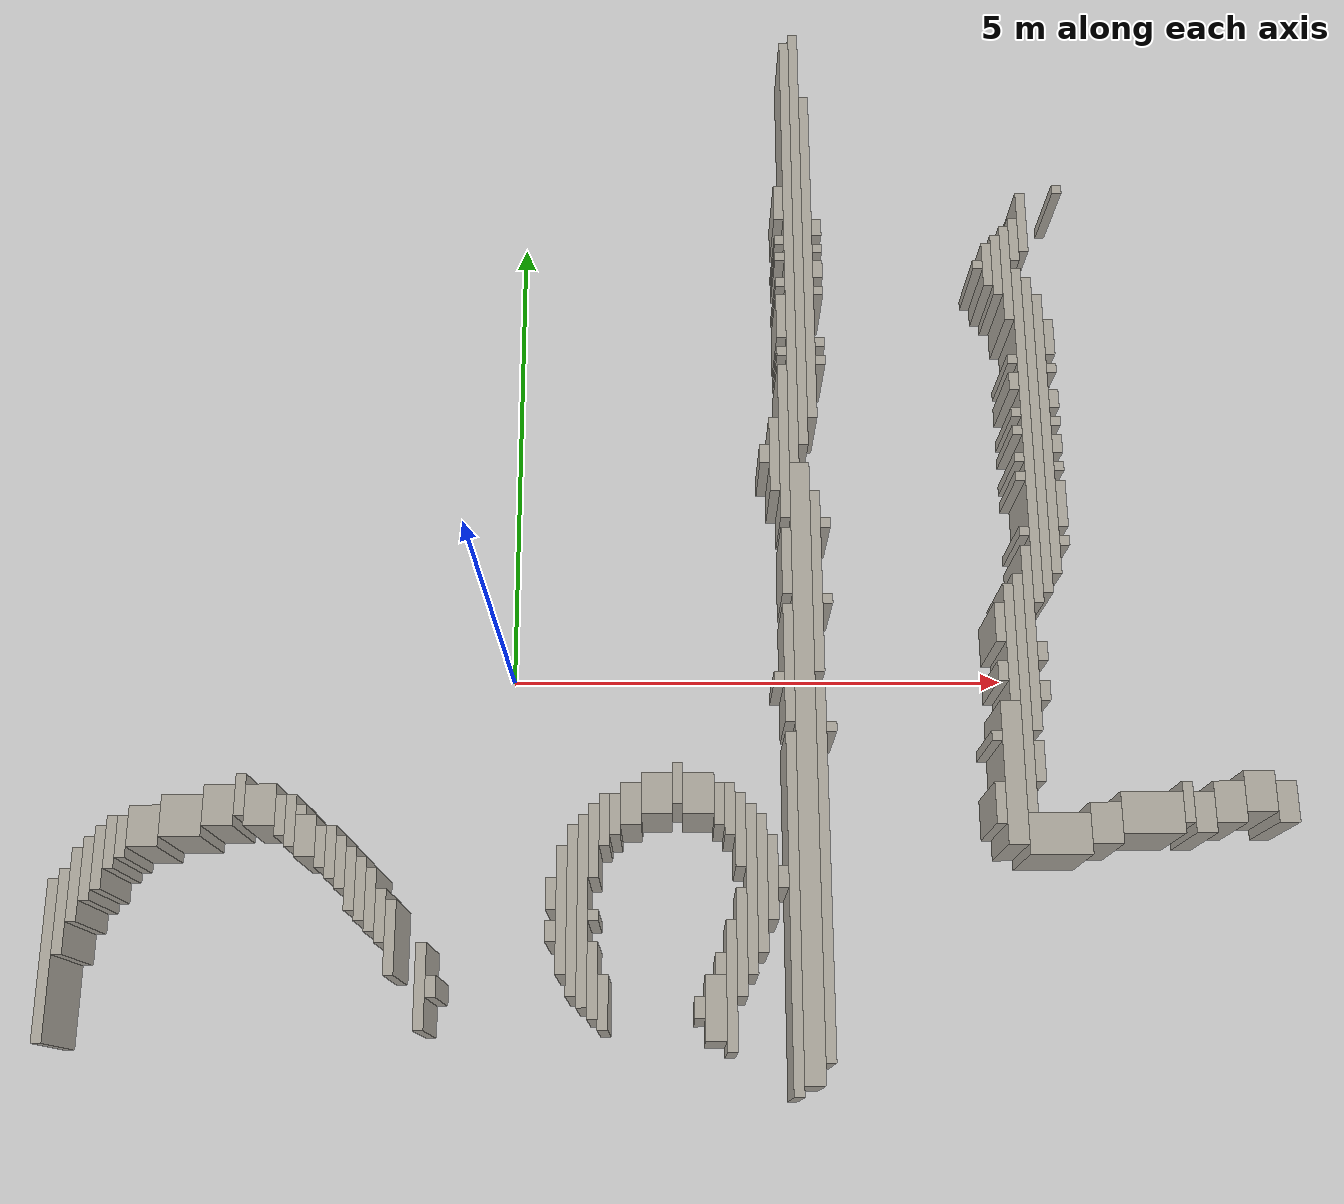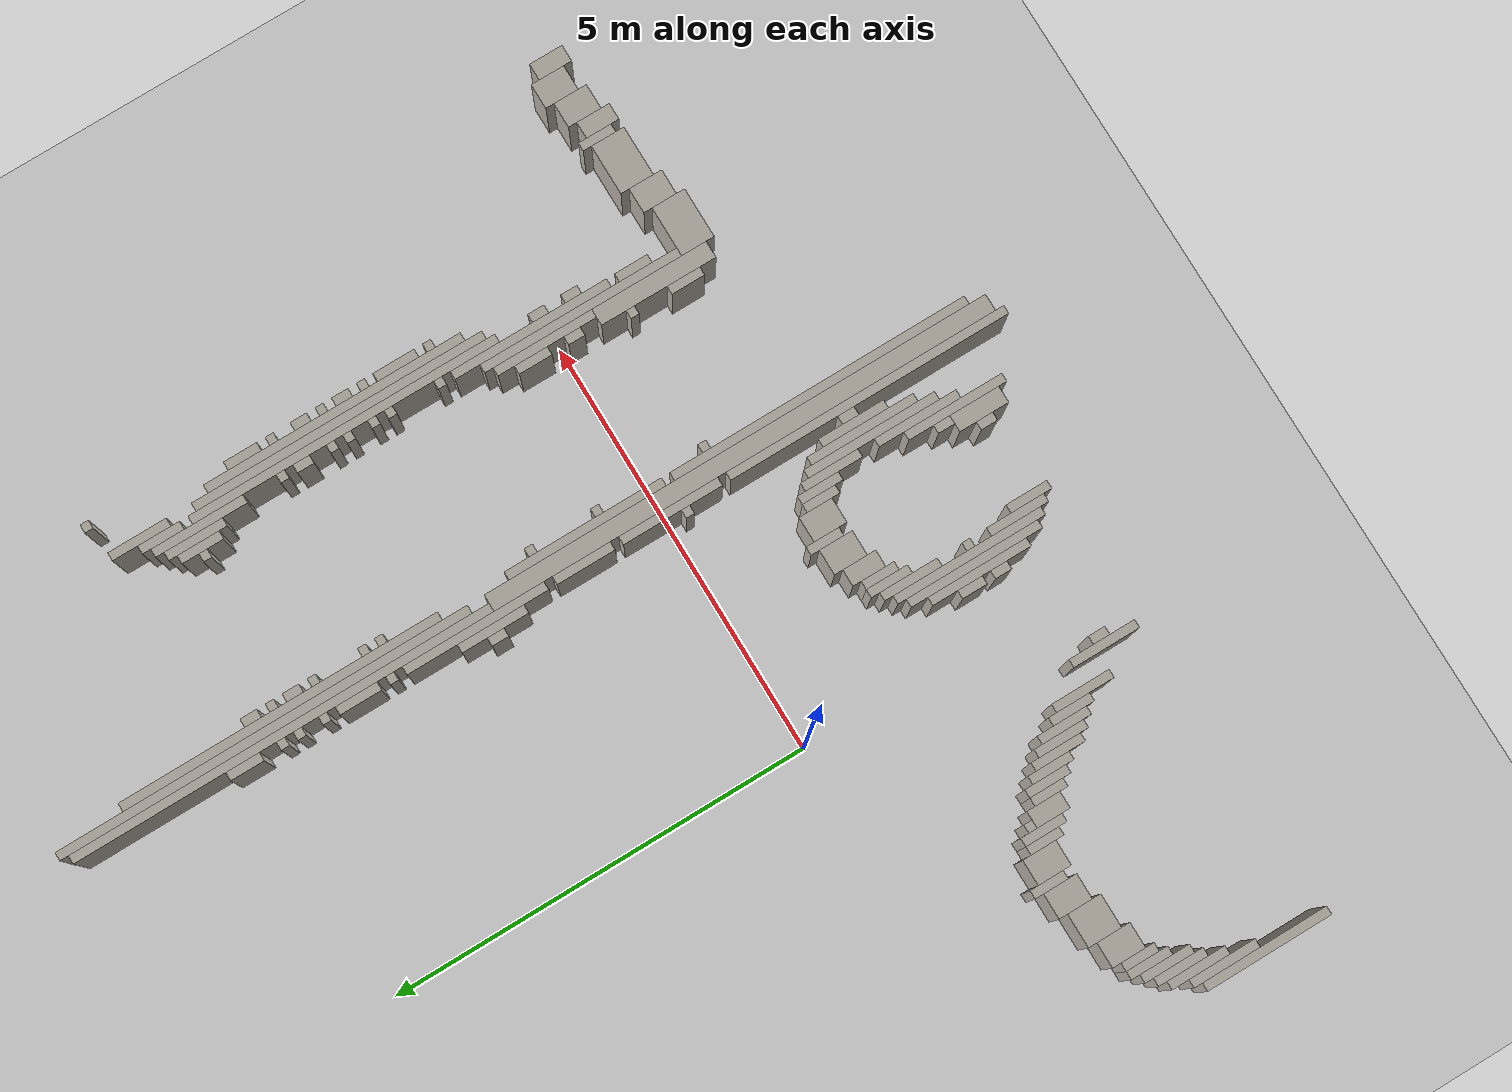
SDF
<sdf version="1.6">
 <world name="willow_office">
  <include><uri>model://sun</uri></include>
  <include><uri>model://ground_plane</uri></include>
  <model name="willow_office_walls">
   <static>true</static>
   <link name="w0253">
    <pose>2.765 -2.438 0.500 0 0 0</pose>
    <collision name="c"><geometry><box><size>0.100 3.400 1.000</size></box></geometry></collision>
    <visual name="v">
     <geometry><box><size>0.100 3.400 1.000</size></box></geometry>
     <material><ambient>0.68 0.66 0.62 1</ambient><diffuse>0.68 0.66 0.62 1</diffuse></material>
    </visual>
   </link>
   <link name="w0261">
    <pose>2.915 -0.988 0.500 0 0 0</pose>
    <collision name="c"><geometry><box><size>0.200 6.100 1.000</size></box></geometry></collision>
    <visual name="v">
     <geometry><box><size>0.200 6.100 1.000</size></box></geometry>
     <material><ambient>0.68 0.66 0.62 1</ambient><diffuse>0.68 0.66 0.62 1</diffuse></material>
    </visual>
   </link>
   <link name="w0270">
    <pose>3.065 -2.038 0.500 0 0 0</pose>
    <collision name="c"><geometry><box><size>0.100 3.600 1.000</size></box></geometry></collision>
    <visual name="v">
     <geometry><box><size>0.100 3.600 1.000</size></box></geometry>
     <material><ambient>0.68 0.66 0.62 1</ambient><diffuse>0.68 0.66 0.62 1</diffuse></material>
    </visual>
   </link>
   <link name="w0278">
    <pose>2.165 -3.138 0.500 0 0 0</pose>
    <collision name="c"><geometry><box><size>0.100 1.200 1.000</size></box></geometry></collision>
    <visual name="v">
     <geometry><box><size>0.100 1.200 1.000</size></box></geometry>
     <material><ambient>0.68 0.66 0.62 1</ambient><diffuse>0.68 0.66 0.62 1</diffuse></material>
    </visual>
   </link>
   <link name="w0287">
    <pose>-4.235 -2.888 0.500 0 0 0</pose>
    <collision name="c"><geometry><box><size>0.100 1.500 1.000</size></box></geometry></collision>
    <visual name="v">
     <geometry><box><size>0.100 1.500 1.000</size></box></geometry>
     <material><ambient>0.68 0.66 0.62 1</ambient><diffuse>0.68 0.66 0.62 1</diffuse></material>
    </visual>
   </link>
   <link name="w0289">
    <pose>2.015 -3.338 0.500 0 0 0</pose>
    <collision name="c"><geometry><box><size>0.200 0.600 1.000</size></box></geometry></collision>
    <visual name="v">
     <geometry><box><size>0.200 0.600 1.000</size></box></geometry>
     <material><ambient>0.68 0.66 0.62 1</ambient><diffuse>0.68 0.66 0.62 1</diffuse></material>
    </visual>
   </link>
   <link name="w0297">
    <pose>-0.735 -3.138 0.500 0 0 0</pose>
    <collision name="c"><geometry><box><size>0.100 0.800 1.000</size></box></geometry></collision>
    <visual name="v">
     <geometry><box><size>0.100 0.800 1.000</size></box></geometry>
     <material><ambient>0.68 0.66 0.62 1</ambient><diffuse>0.68 0.66 0.62 1</diffuse></material>
    </visual>
   </link>
   <link name="w0298">
    <pose>0.965 -3.288 0.500 0 0 0</pose>
    <collision name="c"><geometry><box><size>0.100 0.500 1.000</size></box></geometry></collision>
    <visual name="v">
     <geometry><box><size>0.100 0.500 1.000</size></box></geometry>
     <material><ambient>0.68 0.66 0.62 1</ambient><diffuse>0.68 0.66 0.62 1</diffuse></material>
    </visual>
   </link>
   <link name="w0306">
    <pose>0.865 -3.088 0.500 0 0 0</pose>
    <collision name="c"><geometry><box><size>0.100 0.700 1.000</size></box></geometry></collision>
    <visual name="v">
     <geometry><box><size>0.100 0.700 1.000</size></box></geometry>
     <material><ambient>0.68 0.66 0.62 1</ambient><diffuse>0.68 0.66 0.62 1</diffuse></material>
    </visual>
   </link>
   <link name="w0307">
    <pose>1.865 -3.338 0.500 0 0 0</pose>
    <collision name="c"><geometry><box><size>0.100 0.200 1.000</size></box></geometry></collision>
    <visual name="v">
     <geometry><box><size>0.100 0.200 1.000</size></box></geometry>
     <material><ambient>0.68 0.66 0.62 1</ambient><diffuse>0.68 0.66 0.62 1</diffuse></material>
    </visual>
   </link>
   <link name="w0316">
    <pose>0.765 -2.438 0.500 0 0 0</pose>
    <collision name="c"><geometry><box><size>0.100 1.800 1.000</size></box></geometry></collision>
    <visual name="v">
     <geometry><box><size>0.100 1.800 1.000</size></box></geometry>
     <material><ambient>0.68 0.66 0.62 1</ambient><diffuse>0.68 0.66 0.62 1</diffuse></material>
    </visual>
   </link>
   <link name="w0321">
    <pose>-0.635 -3.138 0.500 0 0 0</pose>
    <collision name="c"><geometry><box><size>0.100 0.200 1.000</size></box></geometry></collision>
    <visual name="v">
     <geometry><box><size>0.100 0.200 1.000</size></box></geometry>
     <material><ambient>0.68 0.66 0.62 1</ambient><diffuse>0.68 0.66 0.62 1</diffuse></material>
    </visual>
   </link>
   <link name="w0322">
    <pose>0.665 -2.438 0.500 0 0 0</pose>
    <collision name="c"><geometry><box><size>0.100 1.600 1.000</size></box></geometry></collision>
    <visual name="v">
     <geometry><box><size>0.100 1.600 1.000</size></box></geometry>
     <material><ambient>0.68 0.66 0.62 1</ambient><diffuse>0.68 0.66 0.62 1</diffuse></material>
    </visual>
   </link>
   <link name="w0323">
    <pose>2.265 -2.738 0.500 0 0 0</pose>
    <collision name="c"><geometry><box><size>0.100 1.000 1.000</size></box></geometry></collision>
    <visual name="v">
     <geometry><box><size>0.100 1.000 1.000</size></box></geometry>
     <material><ambient>0.68 0.66 0.62 1</ambient><diffuse>0.68 0.66 0.62 1</diffuse></material>
    </visual>
   </link>
   <link name="w0336">
    <pose>-1.035 -2.688 0.500 0 0 0</pose>
    <collision name="c"><geometry><box><size>0.100 0.700 1.000</size></box></geometry></collision>
    <visual name="v">
     <geometry><box><size>0.100 0.700 1.000</size></box></geometry>
     <material><ambient>0.68 0.66 0.62 1</ambient><diffuse>0.68 0.66 0.62 1</diffuse></material>
    </visual>
   </link>
   <link name="w0337">
    <pose>0.565 -2.438 0.500 0 0 0</pose>
    <collision name="c"><geometry><box><size>0.100 1.200 1.000</size></box></geometry></collision>
    <visual name="v">
     <geometry><box><size>0.100 1.200 1.000</size></box></geometry>
     <material><ambient>0.68 0.66 0.62 1</ambient><diffuse>0.68 0.66 0.62 1</diffuse></material>
    </visual>
   </link>
   <link name="w0338">
    <pose>2.065 -2.938 0.500 0 0 0</pose>
    <collision name="c"><geometry><box><size>0.100 0.200 1.000</size></box></geometry></collision>
    <visual name="v">
     <geometry><box><size>0.100 0.200 1.000</size></box></geometry>
     <material><ambient>0.68 0.66 0.62 1</ambient><diffuse>0.68 0.66 0.62 1</diffuse></material>
    </visual>
   </link>
   <link name="w0339">
    <pose>2.365 -2.238 0.500 0 0 0</pose>
    <collision name="c"><geometry><box><size>0.100 1.600 1.000</size></box></geometry></collision>
    <visual name="v">
     <geometry><box><size>0.100 1.600 1.000</size></box></geometry>
     <material><ambient>0.68 0.66 0.62 1</ambient><diffuse>0.68 0.66 0.62 1</diffuse></material>
    </visual>
   </link>
   <link name="w0354">
    <pose>-4.135 -2.438 0.500 0 0 0</pose>
    <collision name="c"><geometry><box><size>0.100 0.800 1.000</size></box></geometry></collision>
    <visual name="v">
     <geometry><box><size>0.100 0.800 1.000</size></box></geometry>
     <material><ambient>0.68 0.66 0.62 1</ambient><diffuse>0.68 0.66 0.62 1</diffuse></material>
    </visual>
   </link>
   <link name="w0355">
    <pose>2.465 -2.188 0.500 0 0 0</pose>
    <collision name="c"><geometry><box><size>0.100 1.300 1.000</size></box></geometry></collision>
    <visual name="v">
     <geometry><box><size>0.100 1.300 1.000</size></box></geometry>
     <material><ambient>0.68 0.66 0.62 1</ambient><diffuse>0.68 0.66 0.62 1</diffuse></material>
    </visual>
   </link>
   <link name="w0358">
    <pose>-1.135 -2.488 0.500 0 0 0</pose>
    <collision name="c"><geometry><box><size>0.100 0.500 1.000</size></box></geometry></collision>
    <visual name="v">
     <geometry><box><size>0.100 0.500 1.000</size></box></geometry>
     <material><ambient>0.68 0.66 0.62 1</ambient><diffuse>0.68 0.66 0.62 1</diffuse></material>
    </visual>
   </link>
   <link name="w0359">
    <pose>0.465 -2.638 0.500 0 0 0</pose>
    <collision name="c"><geometry><box><size>0.100 0.200 1.000</size></box></geometry></collision>
    <visual name="v">
     <geometry><box><size>0.100 0.200 1.000</size></box></geometry>
     <material><ambient>0.68 0.66 0.62 1</ambient><diffuse>0.68 0.66 0.62 1</diffuse></material>
    </visual>
   </link>
   <link name="w0365">
    <pose>-1.235 -2.338 0.500 0 0 0</pose>
    <collision name="c"><geometry><box><size>0.100 0.600 1.000</size></box></geometry></collision>
    <visual name="v">
     <geometry><box><size>0.100 0.600 1.000</size></box></geometry>
     <material><ambient>0.68 0.66 0.62 1</ambient><diffuse>0.68 0.66 0.62 1</diffuse></material>
    </visual>
   </link>
   <link name="w0368">
    <pose>-4.035 -2.188 0.500 0 0 0</pose>
    <collision name="c"><geometry><box><size>0.100 0.700 1.000</size></box></geometry></collision>
    <visual name="v">
     <geometry><box><size>0.100 0.700 1.000</size></box></geometry>
     <material><ambient>0.68 0.66 0.62 1</ambient><diffuse>0.68 0.66 0.62 1</diffuse></material>
    </visual>
   </link>
   <link name="w0369">
    <pose>-1.335 -2.238 0.500 0 0 0</pose>
    <collision name="c"><geometry><box><size>0.100 0.600 1.000</size></box></geometry></collision>
    <visual name="v">
     <geometry><box><size>0.100 0.600 1.000</size></box></geometry>
     <material><ambient>0.68 0.66 0.62 1</ambient><diffuse>0.68 0.66 0.62 1</diffuse></material>
    </visual>
   </link>
   <link name="w0370">
    <pose>0.865 -2.488 0.500 0 0 0</pose>
    <collision name="c"><geometry><box><size>0.100 0.100 1.000</size></box></geometry></collision>
    <visual name="v">
     <geometry><box><size>0.100 0.100 1.000</size></box></geometry>
     <material><ambient>0.68 0.66 0.62 1</ambient><diffuse>0.68 0.66 0.62 1</diffuse></material>
    </visual>
   </link>
   <link name="w0371">
    <pose>2.565 -2.138 0.500 0 0 0</pose>
    <collision name="c"><geometry><box><size>0.100 0.800 1.000</size></box></geometry></collision>
    <visual name="v">
     <geometry><box><size>0.100 0.800 1.000</size></box></geometry>
     <material><ambient>0.68 0.66 0.62 1</ambient><diffuse>0.68 0.66 0.62 1</diffuse></material>
    </visual>
   </link>
   <link name="w0375">
    <pose>-1.435 -2.138 0.500 0 0 0</pose>
    <collision name="c"><geometry><box><size>0.100 0.600 1.000</size></box></geometry></collision>
    <visual name="v">
     <geometry><box><size>0.100 0.600 1.000</size></box></geometry>
     <material><ambient>0.68 0.66 0.62 1</ambient><diffuse>0.68 0.66 0.62 1</diffuse></material>
    </visual>
   </link>
   <link name="w0376">
    <pose>0.465 -2.288 0.500 0 0 0</pose>
    <collision name="c"><geometry><box><size>0.100 0.300 1.000</size></box></geometry></collision>
    <visual name="v">
     <geometry><box><size>0.100 0.300 1.000</size></box></geometry>
     <material><ambient>0.68 0.66 0.62 1</ambient><diffuse>0.68 0.66 0.62 1</diffuse></material>
    </visual>
   </link>
   <link name="w0378">
    <pose>-3.935 -2.038 0.500 0 0 0</pose>
    <collision name="c"><geometry><box><size>0.100 0.600 1.000</size></box></geometry></collision>
    <visual name="v">
     <geometry><box><size>0.100 0.600 1.000</size></box></geometry>
     <material><ambient>0.68 0.66 0.62 1</ambient><diffuse>0.68 0.66 0.62 1</diffuse></material>
    </visual>
   </link>
   <link name="w0380">
    <pose>-3.835 -1.938 0.500 0 0 0</pose>
    <collision name="c"><geometry><box><size>0.100 0.600 1.000</size></box></geometry></collision>
    <visual name="v">
     <geometry><box><size>0.100 0.600 1.000</size></box></geometry>
     <material><ambient>0.68 0.66 0.62 1</ambient><diffuse>0.68 0.66 0.62 1</diffuse></material>
    </visual>
   </link>
   <link name="w0381">
    <pose>-1.535 -1.988 0.500 0 0 0</pose>
    <collision name="c"><geometry><box><size>0.100 0.500 1.000</size></box></geometry></collision>
    <visual name="v">
     <geometry><box><size>0.100 0.500 1.000</size></box></geometry>
     <material><ambient>0.68 0.66 0.62 1</ambient><diffuse>0.68 0.66 0.62 1</diffuse></material>
    </visual>
   </link>
   <link name="w0382">
    <pose>2.665 -2.138 0.500 0 0 0</pose>
    <collision name="c"><geometry><box><size>0.100 0.200 1.000</size></box></geometry></collision>
    <visual name="v">
     <geometry><box><size>0.100 0.200 1.000</size></box></geometry>
     <material><ambient>0.68 0.66 0.62 1</ambient><diffuse>0.68 0.66 0.62 1</diffuse></material>
    </visual>
   </link>
   <link name="w0386">
    <pose>-1.635 -1.888 0.500 0 0 0</pose>
    <collision name="c"><geometry><box><size>0.100 0.500 1.000</size></box></geometry></collision>
    <visual name="v">
     <geometry><box><size>0.100 0.500 1.000</size></box></geometry>
     <material><ambient>0.68 0.66 0.62 1</ambient><diffuse>0.68 0.66 0.62 1</diffuse></material>
    </visual>
   </link>
   <link name="w0387">
    <pose>0.865 -1.788 0.500 0 0 0</pose>
    <collision name="c"><geometry><box><size>0.100 0.700 1.000</size></box></geometry></collision>
    <visual name="v">
     <geometry><box><size>0.100 0.700 1.000</size></box></geometry>
     <material><ambient>0.68 0.66 0.62 1</ambient><diffuse>0.68 0.66 0.62 1</diffuse></material>
    </visual>
   </link>
   <link name="w0392">
    <pose>-3.735 -1.788 0.500 0 0 0</pose>
    <collision name="c"><geometry><box><size>0.100 0.500 1.000</size></box></geometry></collision>
    <visual name="v">
     <geometry><box><size>0.100 0.500 1.000</size></box></geometry>
     <material><ambient>0.68 0.66 0.62 1</ambient><diffuse>0.68 0.66 0.62 1</diffuse></material>
    </visual>
   </link>
   <link name="w0393">
    <pose>-1.735 -1.838 0.500 0 0 0</pose>
    <collision name="c"><geometry><box><size>0.100 0.400 1.000</size></box></geometry></collision>
    <visual name="v">
     <geometry><box><size>0.100 0.400 1.000</size></box></geometry>
     <material><ambient>0.68 0.66 0.62 1</ambient><diffuse>0.68 0.66 0.62 1</diffuse></material>
    </visual>
   </link>
   <link name="w0394">
    <pose>2.265 -1.688 0.500 0 0 0</pose>
    <collision name="c"><geometry><box><size>0.100 0.700 1.000</size></box></geometry></collision>
    <visual name="v">
     <geometry><box><size>0.100 0.700 1.000</size></box></geometry>
     <material><ambient>0.68 0.66 0.62 1</ambient><diffuse>0.68 0.66 0.62 1</diffuse></material>
    </visual>
   </link>
   <link name="w0400">
    <pose>-3.635 -1.738 0.500 0 0 0</pose>
    <collision name="c"><geometry><box><size>0.100 0.400 1.000</size></box></geometry></collision>
    <visual name="v">
     <geometry><box><size>0.100 0.400 1.000</size></box></geometry>
     <material><ambient>0.68 0.66 0.62 1</ambient><diffuse>0.68 0.66 0.62 1</diffuse></material>
    </visual>
   </link>
   <link name="w0401">
    <pose>-1.885 -1.738 0.500 0 0 0</pose>
    <collision name="c"><geometry><box><size>0.200 0.400 1.000</size></box></geometry></collision>
    <visual name="v">
     <geometry><box><size>0.200 0.400 1.000</size></box></geometry>
     <material><ambient>0.68 0.66 0.62 1</ambient><diffuse>0.68 0.66 0.62 1</diffuse></material>
    </visual>
   </link>
   <link name="w0402">
    <pose>5.315 -1.738 0.500 0 0 0</pose>
    <collision name="c"><geometry><box><size>0.600 0.400 1.000</size></box></geometry></collision>
    <visual name="v">
     <geometry><box><size>0.600 0.400 1.000</size></box></geometry>
     <material><ambient>0.68 0.66 0.62 1</ambient><diffuse>0.68 0.66 0.62 1</diffuse></material>
    </visual>
   </link>
   <link name="w0408">
    <pose>-3.435 -1.638 0.500 0 0 0</pose>
    <collision name="c"><geometry><box><size>0.300 0.400 1.000</size></box></geometry></collision>
    <visual name="v">
     <geometry><box><size>0.300 0.400 1.000</size></box></geometry>
     <material><ambient>0.68 0.66 0.62 1</ambient><diffuse>0.68 0.66 0.62 1</diffuse></material>
    </visual>
   </link>
   <link name="w0409">
    <pose>-2.035 -1.588 0.500 0 0 0</pose>
    <collision name="c"><geometry><box><size>0.100 0.500 1.000</size></box></geometry></collision>
    <visual name="v">
     <geometry><box><size>0.100 0.500 1.000</size></box></geometry>
     <material><ambient>0.68 0.66 0.62 1</ambient><diffuse>0.68 0.66 0.62 1</diffuse></material>
    </visual>
   </link>
   <link name="w0410">
    <pose>0.965 -1.588 0.500 0 0 0</pose>
    <collision name="c"><geometry><box><size>0.100 0.500 1.000</size></box></geometry></collision>
    <visual name="v">
     <geometry><box><size>0.100 0.500 1.000</size></box></geometry>
     <material><ambient>0.68 0.66 0.62 1</ambient><diffuse>0.68 0.66 0.62 1</diffuse></material>
    </visual>
   </link>
   <link name="w0411">
    <pose>4.915 -1.138 0.500 0 0 0</pose>
    <collision name="c"><geometry><box><size>0.200 1.400 1.000</size></box></geometry></collision>
    <visual name="v">
     <geometry><box><size>0.200 1.400 1.000</size></box></geometry>
     <material><ambient>0.68 0.66 0.62 1</ambient><diffuse>0.68 0.66 0.62 1</diffuse></material>
    </visual>
   </link>
   <link name="w0412">
    <pose>5.765 -1.638 0.500 0 0 0</pose>
    <collision name="c"><geometry><box><size>0.300 0.400 1.000</size></box></geometry></collision>
    <visual name="v">
     <geometry><box><size>0.300 0.400 1.000</size></box></geometry>
     <material><ambient>0.68 0.66 0.62 1</ambient><diffuse>0.68 0.66 0.62 1</diffuse></material>
    </visual>
   </link>
   <link name="w0417">
    <pose>-3.085 -1.538 0.500 0 0 0</pose>
    <collision name="c"><geometry><box><size>0.400 0.400 1.000</size></box></geometry></collision>
    <visual name="v">
     <geometry><box><size>0.400 0.400 1.000</size></box></geometry>
     <material><ambient>0.68 0.66 0.62 1</ambient><diffuse>0.68 0.66 0.62 1</diffuse></material>
    </visual>
   </link>
   <link name="w0418">
    <pose>-2.135 -1.538 0.500 0 0 0</pose>
    <collision name="c"><geometry><box><size>0.100 0.400 1.000</size></box></geometry></collision>
    <visual name="v">
     <geometry><box><size>0.100 0.400 1.000</size></box></geometry>
     <material><ambient>0.68 0.66 0.62 1</ambient><diffuse>0.68 0.66 0.62 1</diffuse></material>
    </visual>
   </link>
   <link name="w0419">
    <pose>1.065 -1.538 0.500 0 0 0</pose>
    <collision name="c"><geometry><box><size>0.100 0.400 1.000</size></box></geometry></collision>
    <visual name="v">
     <geometry><box><size>0.100 0.400 1.000</size></box></geometry>
     <material><ambient>0.68 0.66 0.62 1</ambient><diffuse>0.68 0.66 0.62 1</diffuse></material>
    </visual>
   </link>
   <link name="w0420">
    <pose>2.165 -1.488 0.500 0 0 0</pose>
    <collision name="c"><geometry><box><size>0.100 0.500 1.000</size></box></geometry></collision>
    <visual name="v">
     <geometry><box><size>0.100 0.500 1.000</size></box></geometry>
     <material><ambient>0.68 0.66 0.62 1</ambient><diffuse>0.68 0.66 0.62 1</diffuse></material>
    </visual>
   </link>
   <link name="w0421">
    <pose>6.215 -1.538 0.500 0 0 0</pose>
    <collision name="c"><geometry><box><size>0.600 0.400 1.000</size></box></geometry></collision>
    <visual name="v">
     <geometry><box><size>0.600 0.400 1.000</size></box></geometry>
     <material><ambient>0.68 0.66 0.62 1</ambient><diffuse>0.68 0.66 0.62 1</diffuse></material>
    </visual>
   </link>
   <link name="w0422">
    <pose>6.715 -1.538 0.500 0 0 0</pose>
    <collision name="c"><geometry><box><size>0.200 0.400 1.000</size></box></geometry></collision>
    <visual name="v">
     <geometry><box><size>0.200 0.400 1.000</size></box></geometry>
     <material><ambient>0.68 0.66 0.62 1</ambient><diffuse>0.68 0.66 0.62 1</diffuse></material>
    </visual>
   </link>
   <link name="w0427">
    <pose>-2.735 -1.438 0.500 0 0 0</pose>
    <collision name="c"><geometry><box><size>0.300 0.400 1.000</size></box></geometry></collision>
    <visual name="v">
     <geometry><box><size>0.300 0.400 1.000</size></box></geometry>
     <material><ambient>0.68 0.66 0.62 1</ambient><diffuse>0.68 0.66 0.62 1</diffuse></material>
    </visual>
   </link>
   <link name="w0428">
    <pose>-2.335 -1.438 0.500 0 0 0</pose>
    <collision name="c"><geometry><box><size>0.300 0.400 1.000</size></box></geometry></collision>
    <visual name="v">
     <geometry><box><size>0.300 0.400 1.000</size></box></geometry>
     <material><ambient>0.68 0.66 0.62 1</ambient><diffuse>0.68 0.66 0.62 1</diffuse></material>
    </visual>
   </link>
   <link name="w0429">
    <pose>1.215 -1.438 0.500 0 0 0</pose>
    <collision name="c"><geometry><box><size>0.200 0.400 1.000</size></box></geometry></collision>
    <visual name="v">
     <geometry><box><size>0.200 0.400 1.000</size></box></geometry>
     <material><ambient>0.68 0.66 0.62 1</ambient><diffuse>0.68 0.66 0.62 1</diffuse></material>
    </visual>
   </link>
   <link name="w0430">
    <pose>2.065 -1.438 0.500 0 0 0</pose>
    <collision name="c"><geometry><box><size>0.100 0.400 1.000</size></box></geometry></collision>
    <visual name="v">
     <geometry><box><size>0.100 0.400 1.000</size></box></geometry>
     <material><ambient>0.68 0.66 0.62 1</ambient><diffuse>0.68 0.66 0.62 1</diffuse></material>
    </visual>
   </link>
   <link name="w0431">
    <pose>4.765 -1.438 0.500 0 0 0</pose>
    <collision name="c"><geometry><box><size>0.100 0.400 1.000</size></box></geometry></collision>
    <visual name="v">
     <geometry><box><size>0.100 0.400 1.000</size></box></geometry>
     <material><ambient>0.68 0.66 0.62 1</ambient><diffuse>0.68 0.66 0.62 1</diffuse></material>
    </visual>
   </link>
   <link name="w0432">
    <pose>6.565 -1.438 0.500 0 0 0</pose>
    <collision name="c"><geometry><box><size>0.100 0.400 1.000</size></box></geometry></collision>
    <visual name="v">
     <geometry><box><size>0.100 0.400 1.000</size></box></geometry>
     <material><ambient>0.68 0.66 0.62 1</ambient><diffuse>0.68 0.66 0.62 1</diffuse></material>
    </visual>
   </link>
   <link name="w0433">
    <pose>6.965 -1.438 0.500 0 0 0</pose>
    <collision name="c"><geometry><box><size>0.300 0.400 1.000</size></box></geometry></collision>
    <visual name="v">
     <geometry><box><size>0.300 0.400 1.000</size></box></geometry>
     <material><ambient>0.68 0.66 0.62 1</ambient><diffuse>0.68 0.66 0.62 1</diffuse></material>
    </visual>
   </link>
   <link name="w0434">
    <pose>7.515 -1.438 0.500 0 0 0</pose>
    <collision name="c"><geometry><box><size>0.200 0.400 1.000</size></box></geometry></collision>
    <visual name="v">
     <geometry><box><size>0.200 0.400 1.000</size></box></geometry>
     <material><ambient>0.68 0.66 0.62 1</ambient><diffuse>0.68 0.66 0.62 1</diffuse></material>
    </visual>
   </link>
   <link name="w0441">
    <pose>-2.535 -1.338 0.500 0 0 0</pose>
    <collision name="c"><geometry><box><size>0.100 0.400 1.000</size></box></geometry></collision>
    <visual name="v">
     <geometry><box><size>0.100 0.400 1.000</size></box></geometry>
     <material><ambient>0.68 0.66 0.62 1</ambient><diffuse>0.68 0.66 0.62 1</diffuse></material>
    </visual>
   </link>
   <link name="w0442">
    <pose>-1.935 -1.488 0.500 0 0 0</pose>
    <collision name="c"><geometry><box><size>0.100 0.100 1.000</size></box></geometry></collision>
    <visual name="v">
     <geometry><box><size>0.100 0.100 1.000</size></box></geometry>
     <material><ambient>0.68 0.66 0.62 1</ambient><diffuse>0.68 0.66 0.62 1</diffuse></material>
    </visual>
   </link>
   <link name="w0443">
    <pose>1.465 -1.338 0.500 0 0 0</pose>
    <collision name="c"><geometry><box><size>0.300 0.400 1.000</size></box></geometry></collision>
    <visual name="v">
     <geometry><box><size>0.300 0.400 1.000</size></box></geometry>
     <material><ambient>0.68 0.66 0.62 1</ambient><diffuse>0.68 0.66 0.62 1</diffuse></material>
    </visual>
   </link>
   <link name="w0444">
    <pose>1.865 -1.338 0.500 0 0 0</pose>
    <collision name="c"><geometry><box><size>0.300 0.400 1.000</size></box></geometry></collision>
    <visual name="v">
     <geometry><box><size>0.300 0.400 1.000</size></box></geometry>
     <material><ambient>0.68 0.66 0.62 1</ambient><diffuse>0.68 0.66 0.62 1</diffuse></material>
    </visual>
   </link>
   <link name="w0445">
    <pose>5.065 -0.338 0.500 0 0 0</pose>
    <collision name="c"><geometry><box><size>0.100 2.400 1.000</size></box></geometry></collision>
    <visual name="v">
     <geometry><box><size>0.100 2.400 1.000</size></box></geometry>
     <material><ambient>0.68 0.66 0.62 1</ambient><diffuse>0.68 0.66 0.62 1</diffuse></material>
    </visual>
   </link>
   <link name="w0446">
    <pose>7.265 -1.338 0.500 0 0 0</pose>
    <collision name="c"><geometry><box><size>0.300 0.400 1.000</size></box></geometry></collision>
    <visual name="v">
     <geometry><box><size>0.300 0.400 1.000</size></box></geometry>
     <material><ambient>0.68 0.66 0.62 1</ambient><diffuse>0.68 0.66 0.62 1</diffuse></material>
    </visual>
   </link>
   <link name="w0453">
    <pose>1.665 -1.238 0.500 0 0 0</pose>
    <collision name="c"><geometry><box><size>0.100 0.400 1.000</size></box></geometry></collision>
    <visual name="v">
     <geometry><box><size>0.100 0.400 1.000</size></box></geometry>
     <material><ambient>0.68 0.66 0.62 1</ambient><diffuse>0.68 0.66 0.62 1</diffuse></material>
    </visual>
   </link>
   <link name="w0466">
    <pose>5.165 -1.038 0.500 0 0 0</pose>
    <collision name="c"><geometry><box><size>0.100 0.400 1.000</size></box></geometry></collision>
    <visual name="v">
     <geometry><box><size>0.100 0.400 1.000</size></box></geometry>
     <material><ambient>0.68 0.66 0.62 1</ambient><diffuse>0.68 0.66 0.62 1</diffuse></material>
    </visual>
   </link>
   <link name="w0481">
    <pose>4.765 -0.788 0.500 0 0 0</pose>
    <collision name="c"><geometry><box><size>0.100 0.100 1.000</size></box></geometry></collision>
    <visual name="v">
     <geometry><box><size>0.100 0.100 1.000</size></box></geometry>
     <material><ambient>0.68 0.66 0.62 1</ambient><diffuse>0.68 0.66 0.62 1</diffuse></material>
    </visual>
   </link>
   <link name="w0485">
    <pose>3.165 -0.688 0.500 0 0 0</pose>
    <collision name="c"><geometry><box><size>0.100 0.100 1.000</size></box></geometry></collision>
    <visual name="v">
     <geometry><box><size>0.100 0.100 1.000</size></box></geometry>
     <material><ambient>0.68 0.66 0.62 1</ambient><diffuse>0.68 0.66 0.62 1</diffuse></material>
    </visual>
   </link>
   <link name="w0486">
    <pose>5.165 0.212 0.500 0 0 0</pose>
    <collision name="c"><geometry><box><size>0.100 1.900 1.000</size></box></geometry></collision>
    <visual name="v">
     <geometry><box><size>0.100 1.900 1.000</size></box></geometry>
     <material><ambient>0.68 0.66 0.62 1</ambient><diffuse>0.68 0.66 0.62 1</diffuse></material>
    </visual>
   </link>
   <link name="w0489">
    <pose>2.765 -0.038 0.500 0 0 0</pose>
    <collision name="c"><geometry><box><size>0.100 1.200 1.000</size></box></geometry></collision>
    <visual name="v">
     <geometry><box><size>0.100 1.200 1.000</size></box></geometry>
     <material><ambient>0.68 0.66 0.62 1</ambient><diffuse>0.68 0.66 0.62 1</diffuse></material>
    </visual>
   </link>
   <link name="w0495">
    <pose>4.965 0.162 0.500 0 0 0</pose>
    <collision name="c"><geometry><box><size>0.100 1.200 1.000</size></box></geometry></collision>
    <visual name="v">
     <geometry><box><size>0.100 1.200 1.000</size></box></geometry>
     <material><ambient>0.68 0.66 0.62 1</ambient><diffuse>0.68 0.66 0.62 1</diffuse></material>
    </visual>
   </link>
   <link name="w0496">
    <pose>5.265 -0.338 0.500 0 0 0</pose>
    <collision name="c"><geometry><box><size>0.100 0.200 1.000</size></box></geometry></collision>
    <visual name="v">
     <geometry><box><size>0.100 0.200 1.000</size></box></geometry>
     <material><ambient>0.68 0.66 0.62 1</ambient><diffuse>0.68 0.66 0.62 1</diffuse></material>
    </visual>
   </link>
   <link name="w0497">
    <pose>2.665 -0.188 0.500 0 0 0</pose>
    <collision name="c"><geometry><box><size>0.100 0.100 1.000</size></box></geometry></collision>
    <visual name="v">
     <geometry><box><size>0.100 0.100 1.000</size></box></geometry>
     <material><ambient>0.68 0.66 0.62 1</ambient><diffuse>0.68 0.66 0.62 1</diffuse></material>
    </visual>
   </link>
   <link name="w0498">
    <pose>4.865 -0.138 0.500 0 0 0</pose>
    <collision name="c"><geometry><box><size>0.100 0.200 1.000</size></box></geometry></collision>
    <visual name="v">
     <geometry><box><size>0.100 0.200 1.000</size></box></geometry>
     <material><ambient>0.68 0.66 0.62 1</ambient><diffuse>0.68 0.66 0.62 1</diffuse></material>
    </visual>
   </link>
   <link name="w0501">
    <pose>3.065 0.812 0.500 0 0 0</pose>
    <collision name="c"><geometry><box><size>0.100 1.900 1.000</size></box></geometry></collision>
    <visual name="v">
     <geometry><box><size>0.100 1.900 1.000</size></box></geometry>
     <material><ambient>0.68 0.66 0.62 1</ambient><diffuse>0.68 0.66 0.62 1</diffuse></material>
    </visual>
   </link>
   <link name="w0502">
    <pose>5.265 0.062 0.500 0 0 0</pose>
    <collision name="c"><geometry><box><size>0.100 0.200 1.000</size></box></geometry></collision>
    <visual name="v">
     <geometry><box><size>0.100 0.200 1.000</size></box></geometry>
     <material><ambient>0.68 0.66 0.62 1</ambient><diffuse>0.68 0.66 0.62 1</diffuse></material>
    </visual>
   </link>
   <link name="w0507">
    <pose>4.865 0.362 0.500 0 0 0</pose>
    <collision name="c"><geometry><box><size>0.100 0.400 1.000</size></box></geometry></collision>
    <visual name="v">
     <geometry><box><size>0.100 0.400 1.000</size></box></geometry>
     <material><ambient>0.68 0.66 0.62 1</ambient><diffuse>0.68 0.66 0.62 1</diffuse></material>
    </visual>
   </link>
   <link name="w0514">
    <pose>3.165 0.612 0.500 0 0 0</pose>
    <collision name="c"><geometry><box><size>0.100 0.100 1.000</size></box></geometry></collision>
    <visual name="v">
     <geometry><box><size>0.100 0.100 1.000</size></box></geometry>
     <material><ambient>0.68 0.66 0.62 1</ambient><diffuse>0.68 0.66 0.62 1</diffuse></material>
    </visual>
   </link>
   <link name="w0515">
    <pose>5.265 2.412 0.500 0 0 0</pose>
    <collision name="c"><geometry><box><size>0.100 3.700 1.000</size></box></geometry></collision>
    <visual name="v">
     <geometry><box><size>0.100 3.700 1.000</size></box></geometry>
     <material><ambient>0.68 0.66 0.62 1</ambient><diffuse>0.68 0.66 0.62 1</diffuse></material>
    </visual>
   </link>
   <link name="w0517">
    <pose>2.765 1.012 0.500 0 0 0</pose>
    <collision name="c"><geometry><box><size>0.100 0.700 1.000</size></box></geometry></collision>
    <visual name="v">
     <geometry><box><size>0.100 0.700 1.000</size></box></geometry>
     <material><ambient>0.68 0.66 0.62 1</ambient><diffuse>0.68 0.66 0.62 1</diffuse></material>
    </visual>
   </link>
   <link name="w0518">
    <pose>5.365 2.412 0.500 0 0 0</pose>
    <collision name="c"><geometry><box><size>0.100 3.500 1.000</size></box></geometry></collision>
    <visual name="v">
     <geometry><box><size>0.100 3.500 1.000</size></box></geometry>
     <material><ambient>0.68 0.66 0.62 1</ambient><diffuse>0.68 0.66 0.62 1</diffuse></material>
    </visual>
   </link>
   <link name="w0521">
    <pose>5.465 2.412 0.500 0 0 0</pose>
    <collision name="c"><geometry><box><size>0.100 3.100 1.000</size></box></geometry></collision>
    <visual name="v">
     <geometry><box><size>0.100 3.100 1.000</size></box></geometry>
     <material><ambient>0.68 0.66 0.62 1</ambient><diffuse>0.68 0.66 0.62 1</diffuse></material>
    </visual>
   </link>
   <link name="w0529">
    <pose>5.565 1.212 0.500 0 0 0</pose>
    <collision name="c"><geometry><box><size>0.100 0.100 1.000</size></box></geometry></collision>
    <visual name="v">
     <geometry><box><size>0.100 0.100 1.000</size></box></geometry>
     <material><ambient>0.68 0.66 0.62 1</ambient><diffuse>0.68 0.66 0.62 1</diffuse></material>
    </visual>
   </link>
   <link name="w0530">
    <pose>5.165 1.312 0.500 0 0 0</pose>
    <collision name="c"><geometry><box><size>0.100 0.100 1.000</size></box></geometry></collision>
    <visual name="v">
     <geometry><box><size>0.100 0.100 1.000</size></box></geometry>
     <material><ambient>0.68 0.66 0.62 1</ambient><diffuse>0.68 0.66 0.62 1</diffuse></material>
    </visual>
   </link>
   <link name="w0533">
    <pose>3.165 1.412 0.500 0 0 0</pose>
    <collision name="c"><geometry><box><size>0.100 0.100 1.000</size></box></geometry></collision>
    <visual name="v">
     <geometry><box><size>0.100 0.100 1.000</size></box></geometry>
     <material><ambient>0.68 0.66 0.62 1</ambient><diffuse>0.68 0.66 0.62 1</diffuse></material>
    </visual>
   </link>
   <link name="w0534">
    <pose>5.565 1.612 0.500 0 0 0</pose>
    <collision name="c"><geometry><box><size>0.100 0.500 1.000</size></box></geometry></collision>
    <visual name="v">
     <geometry><box><size>0.100 0.500 1.000</size></box></geometry>
     <material><ambient>0.68 0.66 0.62 1</ambient><diffuse>0.68 0.66 0.62 1</diffuse></material>
    </visual>
   </link>
   <link name="w0536">
    <pose>2.765 2.312 0.500 0 0 0</pose>
    <collision name="c"><geometry><box><size>0.100 1.700 1.000</size></box></geometry></collision>
    <visual name="v">
     <geometry><box><size>0.100 1.700 1.000</size></box></geometry>
     <material><ambient>0.68 0.66 0.62 1</ambient><diffuse>0.68 0.66 0.62 1</diffuse></material>
    </visual>
   </link>
   <link name="w0539">
    <pose>2.665 2.162 0.500 0 0 0</pose>
    <collision name="c"><geometry><box><size>0.100 0.800 1.000</size></box></geometry></collision>
    <visual name="v">
     <geometry><box><size>0.100 0.800 1.000</size></box></geometry>
     <material><ambient>0.68 0.66 0.62 1</ambient><diffuse>0.68 0.66 0.62 1</diffuse></material>
    </visual>
   </link>
   <link name="w0543">
    <pose>5.165 1.912 0.500 0 0 0</pose>
    <collision name="c"><geometry><box><size>0.100 0.100 1.000</size></box></geometry></collision>
    <visual name="v">
     <geometry><box><size>0.100 0.100 1.000</size></box></geometry>
     <material><ambient>0.68 0.66 0.62 1</ambient><diffuse>0.68 0.66 0.62 1</diffuse></material>
    </visual>
   </link>
   <link name="w0546">
    <pose>5.565 2.012 0.500 0 0 0</pose>
    <collision name="c"><geometry><box><size>0.100 0.100 1.000</size></box></geometry></collision>
    <visual name="v">
     <geometry><box><size>0.100 0.100 1.000</size></box></geometry>
     <material><ambient>0.68 0.66 0.62 1</ambient><diffuse>0.68 0.66 0.62 1</diffuse></material>
    </visual>
   </link>
   <link name="w0550">
    <pose>2.565 2.162 0.500 0 0 0</pose>
    <collision name="c"><geometry><box><size>0.100 0.200 1.000</size></box></geometry></collision>
    <visual name="v">
     <geometry><box><size>0.100 0.200 1.000</size></box></geometry>
     <material><ambient>0.68 0.66 0.62 1</ambient><diffuse>0.68 0.66 0.62 1</diffuse></material>
    </visual>
   </link>
   <link name="w0551">
    <pose>2.865 4.562 0.500 0 0 0</pose>
    <collision name="c"><geometry><box><size>0.100 5.000 1.000</size></box></geometry></collision>
    <visual name="v">
     <geometry><box><size>0.100 5.000 1.000</size></box></geometry>
     <material><ambient>0.68 0.66 0.62 1</ambient><diffuse>0.68 0.66 0.62 1</diffuse></material>
    </visual>
   </link>
   <link name="w0552">
    <pose>5.165 2.112 0.500 0 0 0</pose>
    <collision name="c"><geometry><box><size>0.100 0.100 1.000</size></box></geometry></collision>
    <visual name="v">
     <geometry><box><size>0.100 0.100 1.000</size></box></geometry>
     <material><ambient>0.68 0.66 0.62 1</ambient><diffuse>0.68 0.66 0.62 1</diffuse></material>
    </visual>
   </link>
   <link name="w0554">
    <pose>5.565 2.262 0.500 0 0 0</pose>
    <collision name="c"><geometry><box><size>0.100 0.200 1.000</size></box></geometry></collision>
    <visual name="v">
     <geometry><box><size>0.100 0.200 1.000</size></box></geometry>
     <material><ambient>0.68 0.66 0.62 1</ambient><diffuse>0.68 0.66 0.62 1</diffuse></material>
    </visual>
   </link>
   <link name="w0557">
    <pose>2.965 4.712 0.500 0 0 0</pose>
    <collision name="c"><geometry><box><size>0.100 4.900 1.000</size></box></geometry></collision>
    <visual name="v">
     <geometry><box><size>0.100 4.900 1.000</size></box></geometry>
     <material><ambient>0.68 0.66 0.62 1</ambient><diffuse>0.68 0.66 0.62 1</diffuse></material>
    </visual>
   </link>
   <link name="w0560">
    <pose>5.165 2.412 0.500 0 0 0</pose>
    <collision name="c"><geometry><box><size>0.100 0.100 1.000</size></box></geometry></collision>
    <visual name="v">
     <geometry><box><size>0.100 0.100 1.000</size></box></geometry>
     <material><ambient>0.68 0.66 0.62 1</ambient><diffuse>0.68 0.66 0.62 1</diffuse></material>
    </visual>
   </link>
   <link name="w0563">
    <pose>5.565 2.512 0.500 0 0 0</pose>
    <collision name="c"><geometry><box><size>0.100 0.100 1.000</size></box></geometry></collision>
    <visual name="v">
     <geometry><box><size>0.100 0.100 1.000</size></box></geometry>
     <material><ambient>0.68 0.66 0.62 1</ambient><diffuse>0.68 0.66 0.62 1</diffuse></material>
    </visual>
   </link>
   <link name="w0566">
    <pose>3.065 4.462 0.500 0 0 0</pose>
    <collision name="c"><geometry><box><size>0.100 3.800 1.000</size></box></geometry></collision>
    <visual name="v">
     <geometry><box><size>0.100 3.800 1.000</size></box></geometry>
     <material><ambient>0.68 0.66 0.62 1</ambient><diffuse>0.68 0.66 0.62 1</diffuse></material>
    </visual>
   </link>
   <link name="w0567">
    <pose>5.165 2.612 0.500 0 0 0</pose>
    <collision name="c"><geometry><box><size>0.100 0.100 1.000</size></box></geometry></collision>
    <visual name="v">
     <geometry><box><size>0.100 0.100 1.000</size></box></geometry>
     <material><ambient>0.68 0.66 0.62 1</ambient><diffuse>0.68 0.66 0.62 1</diffuse></material>
    </visual>
   </link>
   <link name="w0570">
    <pose>5.565 2.762 0.500 0 0 0</pose>
    <collision name="c"><geometry><box><size>0.100 0.200 1.000</size></box></geometry></collision>
    <visual name="v">
     <geometry><box><size>0.100 0.200 1.000</size></box></geometry>
     <material><ambient>0.68 0.66 0.62 1</ambient><diffuse>0.68 0.66 0.62 1</diffuse></material>
    </visual>
   </link>
   <link name="w0576">
    <pose>5.165 2.962 0.500 0 0 0</pose>
    <collision name="c"><geometry><box><size>0.100 0.200 1.000</size></box></geometry></collision>
    <visual name="v">
     <geometry><box><size>0.100 0.200 1.000</size></box></geometry>
     <material><ambient>0.68 0.66 0.62 1</ambient><diffuse>0.68 0.66 0.62 1</diffuse></material>
    </visual>
   </link>
   <link name="w0577">
    <pose>5.565 3.112 0.500 0 0 0</pose>
    <collision name="c"><geometry><box><size>0.100 0.100 1.000</size></box></geometry></collision>
    <visual name="v">
     <geometry><box><size>0.100 0.100 1.000</size></box></geometry>
     <material><ambient>0.68 0.66 0.62 1</ambient><diffuse>0.68 0.66 0.62 1</diffuse></material>
    </visual>
   </link>
   <link name="w0581">
    <pose>3.165 3.212 0.500 0 0 0</pose>
    <collision name="c"><geometry><box><size>0.100 0.100 1.000</size></box></geometry></collision>
    <visual name="v">
     <geometry><box><size>0.100 0.100 1.000</size></box></geometry>
     <material><ambient>0.68 0.66 0.62 1</ambient><diffuse>0.68 0.66 0.62 1</diffuse></material>
    </visual>
   </link>
   <link name="w0582">
    <pose>5.165 3.212 0.500 0 0 0</pose>
    <collision name="c"><geometry><box><size>0.100 0.100 1.000</size></box></geometry></collision>
    <visual name="v">
     <geometry><box><size>0.100 0.100 1.000</size></box></geometry>
     <material><ambient>0.68 0.66 0.62 1</ambient><diffuse>0.68 0.66 0.62 1</diffuse></material>
    </visual>
   </link>
   <link name="w0586">
    <pose>2.765 3.312 0.500 0 0 0</pose>
    <collision name="c"><geometry><box><size>0.100 0.100 1.000</size></box></geometry></collision>
    <visual name="v">
     <geometry><box><size>0.100 0.100 1.000</size></box></geometry>
     <material><ambient>0.68 0.66 0.62 1</ambient><diffuse>0.68 0.66 0.62 1</diffuse></material>
    </visual>
   </link>
   <link name="w0587">
    <pose>5.565 3.462 0.500 0 0 0</pose>
    <collision name="c"><geometry><box><size>0.100 0.400 1.000</size></box></geometry></collision>
    <visual name="v">
     <geometry><box><size>0.100 0.400 1.000</size></box></geometry>
     <material><ambient>0.68 0.66 0.62 1</ambient><diffuse>0.68 0.66 0.62 1</diffuse></material>
    </visual>
   </link>
   <link name="w0591">
    <pose>3.165 3.412 0.500 0 0 0</pose>
    <collision name="c"><geometry><box><size>0.100 0.100 1.000</size></box></geometry></collision>
    <visual name="v">
     <geometry><box><size>0.100 0.100 1.000</size></box></geometry>
     <material><ambient>0.68 0.66 0.62 1</ambient><diffuse>0.68 0.66 0.62 1</diffuse></material>
    </visual>
   </link>
   <link name="w0593">
    <pose>2.765 3.712 0.500 0 0 0</pose>
    <collision name="c"><geometry><box><size>0.100 0.500 1.000</size></box></geometry></collision>
    <visual name="v">
     <geometry><box><size>0.100 0.500 1.000</size></box></geometry>
     <material><ambient>0.68 0.66 0.62 1</ambient><diffuse>0.68 0.66 0.62 1</diffuse></material>
    </visual>
   </link>
   <link name="w0598">
    <pose>5.165 4.212 0.500 0 0 0</pose>
    <collision name="c"><geometry><box><size>0.100 1.100 1.000</size></box></geometry></collision>
    <visual name="v">
     <geometry><box><size>0.100 1.100 1.000</size></box></geometry>
     <material><ambient>0.68 0.66 0.62 1</ambient><diffuse>0.68 0.66 0.62 1</diffuse></material>
    </visual>
   </link>
   <link name="w0601">
    <pose>3.165 4.012 0.500 0 0 0</pose>
    <collision name="c"><geometry><box><size>0.100 0.100 1.000</size></box></geometry></collision>
    <visual name="v">
     <geometry><box><size>0.100 0.100 1.000</size></box></geometry>
     <material><ambient>0.68 0.66 0.62 1</ambient><diffuse>0.68 0.66 0.62 1</diffuse></material>
    </visual>
   </link>
   <link name="w0602">
    <pose>5.065 4.312 0.500 0 0 0</pose>
    <collision name="c"><geometry><box><size>0.100 0.700 1.000</size></box></geometry></collision>
    <visual name="v">
     <geometry><box><size>0.100 0.700 1.000</size></box></geometry>
     <material><ambient>0.68 0.66 0.62 1</ambient><diffuse>0.68 0.66 0.62 1</diffuse></material>
    </visual>
   </link>
   <link name="w0604">
    <pose>2.765 4.112 0.500 0 0 0</pose>
    <collision name="c"><geometry><box><size>0.100 0.100 1.000</size></box></geometry></collision>
    <visual name="v">
     <geometry><box><size>0.100 0.100 1.000</size></box></geometry>
     <material><ambient>0.68 0.66 0.62 1</ambient><diffuse>0.68 0.66 0.62 1</diffuse></material>
    </visual>
   </link>
   <link name="w0605">
    <pose>4.965 4.312 0.500 0 0 0</pose>
    <collision name="c"><geometry><box><size>0.100 0.500 1.000</size></box></geometry></collision>
    <visual name="v">
     <geometry><box><size>0.100 0.500 1.000</size></box></geometry>
     <material><ambient>0.68 0.66 0.62 1</ambient><diffuse>0.68 0.66 0.62 1</diffuse></material>
    </visual>
   </link>
   <link name="w0608">
    <pose>3.165 4.262 0.500 0 0 0</pose>
    <collision name="c"><geometry><box><size>0.100 0.200 1.000</size></box></geometry></collision>
    <visual name="v">
     <geometry><box><size>0.100 0.200 1.000</size></box></geometry>
     <material><ambient>0.68 0.66 0.62 1</ambient><diffuse>0.68 0.66 0.62 1</diffuse></material>
    </visual>
   </link>
   <link name="w0611">
    <pose>4.865 4.312 0.500 0 0 0</pose>
    <collision name="c"><geometry><box><size>0.100 0.100 1.000</size></box></geometry></collision>
    <visual name="v">
     <geometry><box><size>0.100 0.100 1.000</size></box></geometry>
     <material><ambient>0.68 0.66 0.62 1</ambient><diffuse>0.68 0.66 0.62 1</diffuse></material>
    </visual>
   </link>
   <link name="w0613">
    <pose>2.765 4.412 0.500 0 0 0</pose>
    <collision name="c"><geometry><box><size>0.100 0.100 1.000</size></box></geometry></collision>
    <visual name="v">
     <geometry><box><size>0.100 0.100 1.000</size></box></geometry>
     <material><ambient>0.68 0.66 0.62 1</ambient><diffuse>0.68 0.66 0.62 1</diffuse></material>
    </visual>
   </link>
   <link name="w0614">
    <pose>5.265 4.612 0.500 0 0 0</pose>
    <collision name="c"><geometry><box><size>0.100 0.500 1.000</size></box></geometry></collision>
    <visual name="v">
     <geometry><box><size>0.100 0.500 1.000</size></box></geometry>
     <material><ambient>0.68 0.66 0.62 1</ambient><diffuse>0.68 0.66 0.62 1</diffuse></material>
    </visual>
   </link>
   <link name="w0616">
    <pose>3.165 4.512 0.500 0 0 0</pose>
    <collision name="c"><geometry><box><size>0.100 0.100 1.000</size></box></geometry></collision>
    <visual name="v">
     <geometry><box><size>0.100 0.100 1.000</size></box></geometry>
     <material><ambient>0.68 0.66 0.62 1</ambient><diffuse>0.68 0.66 0.62 1</diffuse></material>
    </visual>
   </link>
   <link name="w0617">
    <pose>5.365 4.812 0.500 0 0 0</pose>
    <collision name="c"><geometry><box><size>0.100 0.700 1.000</size></box></geometry></collision>
    <visual name="v">
     <geometry><box><size>0.100 0.700 1.000</size></box></geometry>
     <material><ambient>0.68 0.66 0.62 1</ambient><diffuse>0.68 0.66 0.62 1</diffuse></material>
    </visual>
   </link>
   <link name="w0620">
    <pose>2.765 4.612 0.500 0 0 0</pose>
    <collision name="c"><geometry><box><size>0.100 0.100 1.000</size></box></geometry></collision>
    <visual name="v">
     <geometry><box><size>0.100 0.100 1.000</size></box></geometry>
     <material><ambient>0.68 0.66 0.62 1</ambient><diffuse>0.68 0.66 0.62 1</diffuse></material>
    </visual>
   </link>
   <link name="w0623">
    <pose>3.165 4.762 0.500 0 0 0</pose>
    <collision name="c"><geometry><box><size>0.100 0.200 1.000</size></box></geometry></collision>
    <visual name="v">
     <geometry><box><size>0.100 0.200 1.000</size></box></geometry>
     <material><ambient>0.68 0.66 0.62 1</ambient><diffuse>0.68 0.66 0.62 1</diffuse></material>
    </visual>
   </link>
   <link name="w0629">
    <pose>2.765 5.062 0.500 0 0 0</pose>
    <collision name="c"><geometry><box><size>0.100 0.400 1.000</size></box></geometry></collision>
    <visual name="v">
     <geometry><box><size>0.100 0.400 1.000</size></box></geometry>
     <material><ambient>0.68 0.66 0.62 1</ambient><diffuse>0.68 0.66 0.62 1</diffuse></material>
    </visual>
   </link>
   <link name="w0632">
    <pose>5.765 5.212 0.500 0 0 0</pose>
    <collision name="c"><geometry><box><size>0.100 0.100 1.000</size></box></geometry></collision>
    <visual name="v">
     <geometry><box><size>0.100 0.100 1.000</size></box></geometry>
     <material><ambient>0.68 0.66 0.62 1</ambient><diffuse>0.68 0.66 0.62 1</diffuse></material>
    </visual>
   </link>
  </model>
 </world>
</sdf>
